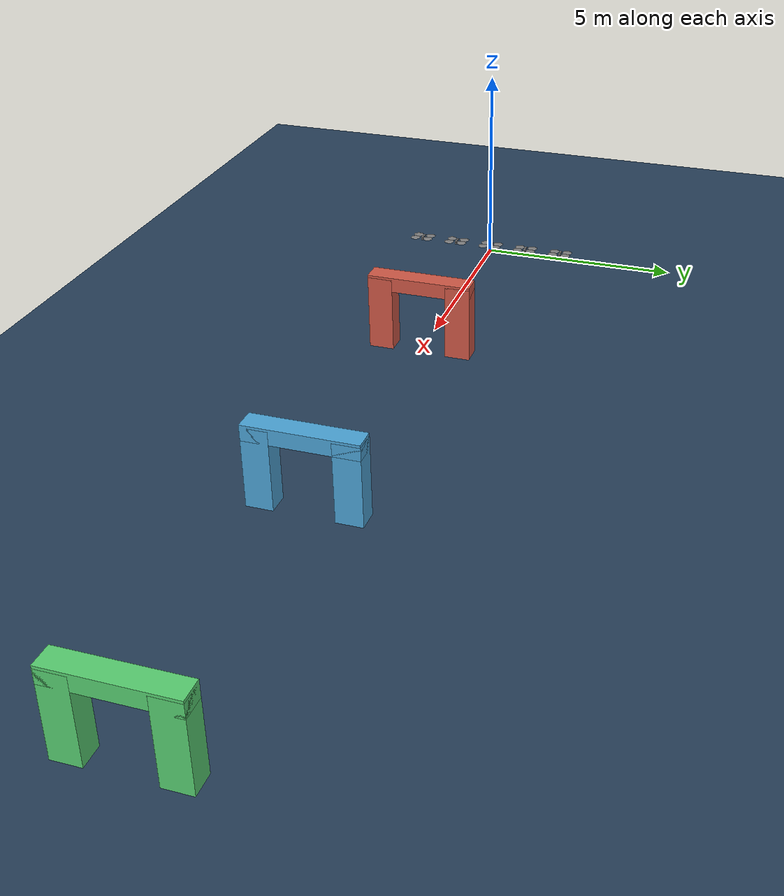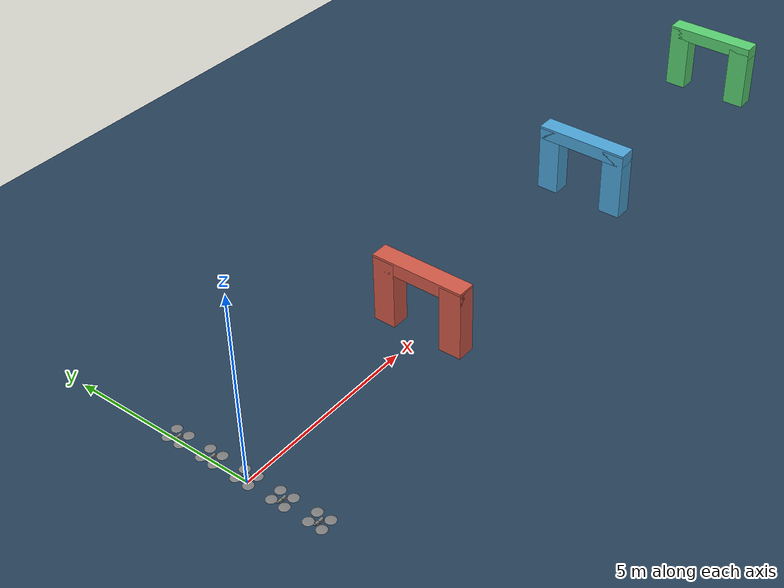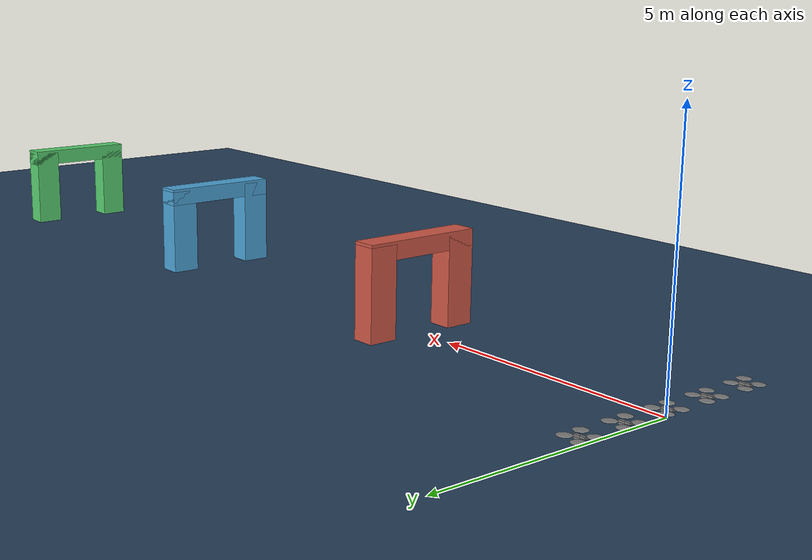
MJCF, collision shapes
<mujoco model="Skydio X2 dynamic moving gates scene">
    <compiler autolimits="true" assetdir="assets"/>

    <option timestep="0.01" density="1.225" viscosity="1.8e-5"/>

    <default>
        <default class="x2">
            <geom mass="0"/>
            <motor ctrlrange="0 13"/>
            <mesh scale="0.01 0.01 0.01"/>
            <default class="visual">
                <geom group="2" type="mesh" contype="0" conaffinity="0"/>
            </default>
            <default class="collision">
                <geom group="3" type="box"/>
                <default class="rotor">
                    <geom type="ellipsoid" size=".13 .13 .01"/>
                </default>
            </default>
            <site group="5"/>
        </default>
    </default>

    <asset>
        <texture type="skybox" builtin="gradient" rgb1="0.3 0.5 0.7" rgb2="0 0 0" width="512" height="3072"/>
        <texture type="2d" name="groundplane" builtin="checker" mark="edge" rgb1="0.2 0.3 0.4" rgb2="0.1 0.2 0.3"
            markrgb="0.8 0.8 0.8" width="300" height="300"/>
        <material name="groundplane" texture="groundplane" texuniform="true" texrepeat="5 5" reflectance="0.2"/>
        <texture type="2d" file="X2_lowpoly_texture_SpinningProps_1024.png"/>
        <material name="phong3SG" texture="X2_lowpoly_texture_SpinningProps_1024"/>
        <material name="invisible" rgba="0 0 0 0"/>
        <material name="gate_material_a" rgba="0.82 0.35 0.28 1" specular="0.3" shininess="0.4"/>
        <material name="gate_material_b" rgba="0.30 0.65 0.85 1" specular="0.3" shininess="0.4"/>
        <material name="gate_material_c" rgba="0.35 0.82 0.45 1" specular="0.3" shininess="0.4"/>
        <mesh class="x2" file="X2_lowpoly.obj"/>
    </asset>

    <worldbody>
        <light name="spotlight" mode="targetbodycom" target="x2_1" pos="1 -2 3"/>
        <light pos="0 0 4" dir="0 0 -1" directional="true"/>
        <geom name="floor" size="0 0 0.05" type="plane" material="groundplane"/>

        <!--
            三个可左右移动的窄门：
            - XML 中先给出初始位置；
            - 运行时由测试脚本直接修改 geom 的 y 坐标，实现左右平移；
            - 三个门均较窄，要求五架无人机在动态情况下依次无缝穿越。
        -->
        <geom name="gate1_left_post" type="box" pos="6.0 -0.96 0.92" size="0.24 0.30 0.92" material="gate_material_a"/>
        <geom name="gate1_right_post" type="box" pos="6.0 0.96 0.92" size="0.24 0.30 0.92" material="gate_material_a"/>
        <geom name="gate1_top_beam" type="box" pos="6.0 0.00 1.72" size="0.24 1.26 0.18" material="gate_material_a"/>

        <geom name="gate2_left_post" type="box" pos="13.0 -0.96 0.92" size="0.24 0.30 0.92" material="gate_material_b"/>
        <geom name="gate2_right_post" type="box" pos="13.0 0.96 0.92" size="0.24 0.30 0.92" material="gate_material_b"/>
        <geom name="gate2_top_beam" type="box" pos="13.0 0.00 1.72" size="0.24 1.26 0.18" material="gate_material_b"/>

        <geom name="gate3_left_post" type="box" pos="20.0 -0.96 0.92" size="0.24 0.30 0.92" material="gate_material_c"/>
        <geom name="gate3_right_post" type="box" pos="20.0 0.96 0.92" size="0.24 0.30 0.92" material="gate_material_c"/>
        <geom name="gate3_top_beam" type="box" pos="20.0 0.00 1.72" size="0.24 1.26 0.18" material="gate_material_c"/>

        <body name="x2_1" pos="0.0 0.0 0.1" childclass="x2">
            <freejoint/>
            <camera name="q1_track" pos="-1 0 .5" xyaxes="0 -1 0 1 0 2" mode="trackcom"/>
            <site name="q1_imu" pos="0 0 .02"/>
            <geom material="phong3SG" mesh="X2_lowpoly" class="visual" quat="0 0 1 1"/>
            <geom class="collision" size=".06 .027 .02" pos=".04 0 .02"/>
            <geom class="collision" size=".06 .027 .02" pos=".04 0 .06"/>
            <geom class="collision" size=".05 .027 .02" pos="-.07 0 .065"/>
            <geom class="collision" size=".023 .017 .01" pos="-.137 .008 .065" quat="1 0 0 1"/>
            <geom name="q1_rotor1" class="rotor" pos="-.14 -.18 .05" mass=".25"/>
            <geom name="q1_rotor2" class="rotor" pos="-.14 .18 .05" mass=".25"/>
            <geom name="q1_rotor3" class="rotor" pos=".14 .18 .08" mass=".25"/>
            <geom name="q1_rotor4" class="rotor" pos=".14 -.18 .08" mass=".25"/>
            <geom size=".16 .04 .02" pos="0 0 0.02" type="ellipsoid" mass=".325" class="visual" material="invisible"/>
            <site name="q1_thrust1" pos="-.14 -.18 .05"/>
            <site name="q1_thrust2" pos="-.14 .18 .05"/>
            <site name="q1_thrust3" pos=".14 .18 .08"/>
            <site name="q1_thrust4" pos=".14 -.18 .08"/>
        </body>

        <body name="x2_2" pos="0.0 1.0 0.1" childclass="x2">
            <freejoint/>
            <camera name="q2_track" pos="-1 0 .5" xyaxes="0 -1 0 1 0 2" mode="trackcom"/>
            <site name="q2_imu" pos="0 0 .02"/>
            <geom material="phong3SG" mesh="X2_lowpoly" class="visual" quat="0 0 1 1"/>
            <geom class="collision" size=".06 .027 .02" pos=".04 0 .02"/>
            <geom class="collision" size=".06 .027 .02" pos=".04 0 .06"/>
            <geom class="collision" size=".05 .027 .02" pos="-.07 0 .065"/>
            <geom class="collision" size=".023 .017 .01" pos="-.137 .008 .065" quat="1 0 0 1"/>
            <geom name="q2_rotor1" class="rotor" pos="-.14 -.18 .05" mass=".25"/>
            <geom name="q2_rotor2" class="rotor" pos="-.14 .18 .05" mass=".25"/>
            <geom name="q2_rotor3" class="rotor" pos=".14 .18 .08" mass=".25"/>
            <geom name="q2_rotor4" class="rotor" pos=".14 -.18 .08" mass=".25"/>
            <geom size=".16 .04 .02" pos="0 0 0.02" type="ellipsoid" mass=".325" class="visual" material="invisible"/>
            <site name="q2_thrust1" pos="-.14 -.18 .05"/>
            <site name="q2_thrust2" pos="-.14 .18 .05"/>
            <site name="q2_thrust3" pos=".14 .18 .08"/>
            <site name="q2_thrust4" pos=".14 -.18 .08"/>
        </body>

        <body name="x2_3" pos="0.0 -1.0 0.1" childclass="x2">
            <freejoint/>
            <camera name="q3_track" pos="-1 0 .5" xyaxes="0 -1 0 1 0 2" mode="trackcom"/>
            <site name="q3_imu" pos="0 0 .02"/>
            <geom material="phong3SG" mesh="X2_lowpoly" class="visual" quat="0 0 1 1"/>
            <geom class="collision" size=".06 .027 .02" pos=".04 0 .02"/>
            <geom class="collision" size=".06 .027 .02" pos=".04 0 .06"/>
            <geom class="collision" size=".05 .027 .02" pos="-.07 0 .065"/>
            <geom class="collision" size=".023 .017 .01" pos="-.137 .008 .065" quat="1 0 0 1"/>
            <geom name="q3_rotor1" class="rotor" pos="-.14 -.18 .05" mass=".25"/>
            <geom name="q3_rotor2" class="rotor" pos="-.14 .18 .05" mass=".25"/>
            <geom name="q3_rotor3" class="rotor" pos=".14 .18 .08" mass=".25"/>
            <geom name="q3_rotor4" class="rotor" pos=".14 -.18 .08" mass=".25"/>
            <geom size=".16 .04 .02" pos="0 0 0.02" type="ellipsoid" mass=".325" class="visual" material="invisible"/>
            <site name="q3_thrust1" pos="-.14 -.18 .05"/>
            <site name="q3_thrust2" pos="-.14 .18 .05"/>
            <site name="q3_thrust3" pos=".14 .18 .08"/>
            <site name="q3_thrust4" pos=".14 -.18 .08"/>
        </body>

        <body name="x2_4" pos="0.0 2.0 0.1" childclass="x2">
            <freejoint/>
            <camera name="q4_track" pos="-1 0 .5" xyaxes="0 -1 0 1 0 2" mode="trackcom"/>
            <site name="q4_imu" pos="0 0 .02"/>
            <geom material="phong3SG" mesh="X2_lowpoly" class="visual" quat="0 0 1 1"/>
            <geom class="collision" size=".06 .027 .02" pos=".04 0 .02"/>
            <geom class="collision" size=".06 .027 .02" pos=".04 0 .06"/>
            <geom class="collision" size=".05 .027 .02" pos="-.07 0 .065"/>
            <geom class="collision" size=".023 .017 .01" pos="-.137 .008 .065" quat="1 0 0 1"/>
            <geom name="q4_rotor1" class="rotor" pos="-.14 -.18 .05" mass=".25"/>
            <geom name="q4_rotor2" class="rotor" pos="-.14 .18 .05" mass=".25"/>
            <geom name="q4_rotor3" class="rotor" pos=".14 .18 .08" mass=".25"/>
            <geom name="q4_rotor4" class="rotor" pos=".14 -.18 .08" mass=".25"/>
            <geom size=".16 .04 .02" pos="0 0 0.02" type="ellipsoid" mass=".325" class="visual" material="invisible"/>
            <site name="q4_thrust1" pos="-.14 -.18 .05"/>
            <site name="q4_thrust2" pos="-.14 .18 .05"/>
            <site name="q4_thrust3" pos=".14 .18 .08"/>
            <site name="q4_thrust4" pos=".14 -.18 .08"/>
        </body>

        <body name="x2_5" pos="0.0 -2.0 0.1" childclass="x2">
            <freejoint/>
            <camera name="q5_track" pos="-1 0 .5" xyaxes="0 -1 0 1 0 2" mode="trackcom"/>
            <site name="q5_imu" pos="0 0 .02"/>
            <geom material="phong3SG" mesh="X2_lowpoly" class="visual" quat="0 0 1 1"/>
            <geom class="collision" size=".06 .027 .02" pos=".04 0 .02"/>
            <geom class="collision" size=".06 .027 .02" pos=".04 0 .06"/>
            <geom class="collision" size=".05 .027 .02" pos="-.07 0 .065"/>
            <geom class="collision" size=".023 .017 .01" pos="-.137 .008 .065" quat="1 0 0 1"/>
            <geom name="q5_rotor1" class="rotor" pos="-.14 -.18 .05" mass=".25"/>
            <geom name="q5_rotor2" class="rotor" pos="-.14 .18 .05" mass=".25"/>
            <geom name="q5_rotor3" class="rotor" pos=".14 .18 .08" mass=".25"/>
            <geom name="q5_rotor4" class="rotor" pos=".14 -.18 .08" mass=".25"/>
            <geom size=".16 .04 .02" pos="0 0 0.02" type="ellipsoid" mass=".325" class="visual" material="invisible"/>
            <site name="q5_thrust1" pos="-.14 -.18 .05"/>
            <site name="q5_thrust2" pos="-.14 .18 .05"/>
            <site name="q5_thrust3" pos=".14 .18 .08"/>
            <site name="q5_thrust4" pos=".14 -.18 .08"/>
        </body>
    </worldbody>

    <actuator>
        <motor class="x2" name="q1_thrust1" site="q1_thrust1" gear="0 0 1 0 0  .0201"/>
        <motor class="x2" name="q1_thrust2" site="q1_thrust2" gear="0 0 1 0 0 -.0201"/>
        <motor class="x2" name="q1_thrust3" site="q1_thrust3" gear="0 0 1 0 0  .0201"/>
        <motor class="x2" name="q1_thrust4" site="q1_thrust4" gear="0 0 1 0 0 -.0201"/>

        <motor class="x2" name="q2_thrust1" site="q2_thrust1" gear="0 0 1 0 0  .0201"/>
        <motor class="x2" name="q2_thrust2" site="q2_thrust2" gear="0 0 1 0 0 -.0201"/>
        <motor class="x2" name="q2_thrust3" site="q2_thrust3" gear="0 0 1 0 0  .0201"/>
        <motor class="x2" name="q2_thrust4" site="q2_thrust4" gear="0 0 1 0 0 -.0201"/>

        <motor class="x2" name="q3_thrust1" site="q3_thrust1" gear="0 0 1 0 0  .0201"/>
        <motor class="x2" name="q3_thrust2" site="q3_thrust2" gear="0 0 1 0 0 -.0201"/>
        <motor class="x2" name="q3_thrust3" site="q3_thrust3" gear="0 0 1 0 0  .0201"/>
        <motor class="x2" name="q3_thrust4" site="q3_thrust4" gear="0 0 1 0 0 -.0201"/>

        <motor class="x2" name="q4_thrust1" site="q4_thrust1" gear="0 0 1 0 0  .0201"/>
        <motor class="x2" name="q4_thrust2" site="q4_thrust2" gear="0 0 1 0 0 -.0201"/>
        <motor class="x2" name="q4_thrust3" site="q4_thrust3" gear="0 0 1 0 0  .0201"/>
        <motor class="x2" name="q4_thrust4" site="q4_thrust4" gear="0 0 1 0 0 -.0201"/>

        <motor class="x2" name="q5_thrust1" site="q5_thrust1" gear="0 0 1 0 0  .0201"/>
        <motor class="x2" name="q5_thrust2" site="q5_thrust2" gear="0 0 1 0 0 -.0201"/>
        <motor class="x2" name="q5_thrust3" site="q5_thrust3" gear="0 0 1 0 0  .0201"/>
        <motor class="x2" name="q5_thrust4" site="q5_thrust4" gear="0 0 1 0 0 -.0201"/>
    </actuator>

    <keyframe>
        <key name="hover"
             qpos="0.0 0.0 0.3 1 0 0 0 0.0 1.0 0.3 1 0 0 0 0.0 -1.0 0.3 1 0 0 0 0.0 2.0 0.3 1 0 0 0 0.0 -2.0 0.3 1 0 0 0"
             ctrl="3.2495625 3.2495625 3.2495625 3.2495625 3.2495625 3.2495625 3.2495625 3.2495625 3.2495625 3.2495625 3.2495625 3.2495625 3.2495625 3.2495625 3.2495625 3.2495625 3.2495625 3.2495625 3.2495625 3.2495625"/>
    </keyframe>

    <sensor>
        <gyro name="q1_body_gyro" site="q1_imu"/>
        <accelerometer name="q1_body_linacc" site="q1_imu"/>
        <framequat name="q1_body_quat" objtype="site" objname="q1_imu"/>

        <gyro name="q2_body_gyro" site="q2_imu"/>
        <accelerometer name="q2_body_linacc" site="q2_imu"/>
        <framequat name="q2_body_quat" objtype="site" objname="q2_imu"/>

        <gyro name="q3_body_gyro" site="q3_imu"/>
        <accelerometer name="q3_body_linacc" site="q3_imu"/>
        <framequat name="q3_body_quat" objtype="site" objname="q3_imu"/>

        <gyro name="q4_body_gyro" site="q4_imu"/>
        <accelerometer name="q4_body_linacc" site="q4_imu"/>
        <framequat name="q4_body_quat" objtype="site" objname="q4_imu"/>

        <gyro name="q5_body_gyro" site="q5_imu"/>
        <accelerometer name="q5_body_linacc" site="q5_imu"/>
        <framequat name="q5_body_quat" objtype="site" objname="q5_imu"/>
    </sensor>
</mujoco>
